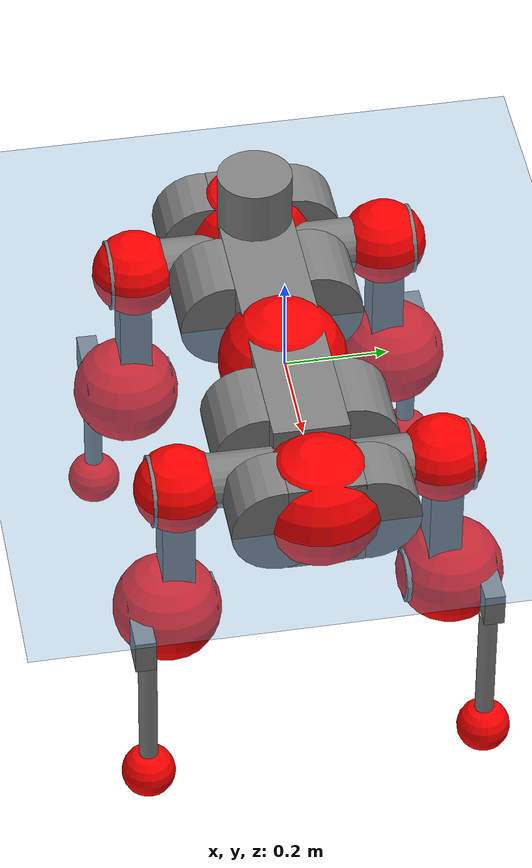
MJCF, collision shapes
<mujoco model="anymal_c">
  <compiler angle="radian" assetdir="assets" balanceinertia="true" inertiafromgeom="false"/>

  <option timestep="0.005" density="1.2" viscosity="2e-05"/>

  <size nkey="1"/>

  <visual>
    <quality shadowsize="8192"/>
    <map shadowclip="0.5"/>
  </visual>

  <default>
    <default class="/">
      <material specular="0" shininess="0.25"/>
      <geom contype="0" conaffinity="0" group="1" solref="-1000 -80"/>
      <site size="0.01 0.005 0.005" group="5"/>
      <general forcelimited="true" forcerange="-80 80" biastype="affine" gainprm="80" biasprm="0 -80 -2"/>
      <default class="anymal_c">
        <joint armature="0.01" damping="0.01" frictionloss="0.1"/>
        <default class="visual">
          <geom type="mesh" group="2"/>
          <default class="visual_zflip"/>
        </default>
        <default class="collision">
          <geom type="cylinder" group="3"/>
          <default class="foot">
            <geom size="0.03 0 0" type="sphere" condim="6" priority="1" friction="0.8 0.02 0.01" solimp="0.015 1 0.03"/>
          </default>
        </default>
      </default>
      <default class="reward_collision_sphere">
        <geom group="5" rgba="1 0 0 1"/>
      </default>
    </default>
  </default>

  <asset>
    <texture type="skybox" colorspace="auto" name="//unnamed_texture_0" builtin="gradient" rgb1="0.95 0.95 0.95" rgb2="0.95 0.95 0.95" width="100" height="600"/>
    <texture type="2d" colorspace="auto" name="texplane" builtin="checker" rgb1="0.345 0.575 0.748" rgb2="0.345 0.575 0.748" markrgb="1 1 1" width="512" height="512"/>
    <texture type="2d" colorspace="linear" name="base" file="base.png"/>
    <texture type="2d" colorspace="linear" name="top_shell" file="top_shell.png"/>
    <texture type="2d" colorspace="linear" name="bottom_shell" file="bottom_shell.png"/>
    <texture type="2d" colorspace="linear" name="remote" file="remote.png"/>
    <texture type="2d" colorspace="linear" name="hatch" file="hatch.png"/>
    <texture type="2d" colorspace="linear" name="handle" file="handle.png"/>
    <texture type="2d" colorspace="linear" name="face" file="face.png"/>
    <texture type="2d" colorspace="linear" name="battery" file="battery.png"/>
    <texture type="2d" colorspace="linear" name="lidar_cage" file="lidar_cage.png"/>
    <texture type="2d" colorspace="linear" name="depth_camera" file="depth_camera.png"/>
    <texture type="2d" colorspace="linear" name="wide_angle_camera" file="wide_angle_camera.png"/>
    <texture type="2d" colorspace="linear" name="lidar" file="lidar.png"/>
    <texture type="2d" colorspace="linear" name="drive" file="drive.png"/>
    <texture type="2d" colorspace="linear" name="hip_l" file="hip_l.png"/>
    <texture type="2d" colorspace="linear" name="shank_l" file="shank_l.png"/>
    <texture type="2d" colorspace="linear" name="foot" file="foot.png"/>
    <texture type="2d" colorspace="linear" name="thigh" file="thigh.png"/>
    <texture type="2d" colorspace="linear" name="shank_r" file="shank_r.png"/>
    <texture type="2d" colorspace="linear" name="hip_r" file="hip_r.png"/>
    <material name="MatPlane" class="/" texture="texplane" texuniform="true" texrepeat="2 2" specular="0.9" shininess="0.5"/>
    <material name="black_plastic" class="/" rgba="0.007 0.007 0.007 1"/>
    <material name="green" class="/" rgba="0.052 0.178 0.033 1"/>
    <material name="red" class="/" rgba="0.178 0.006 0.005 1"/>
    <material name="yellow" class="/" rgba="0.178 0.119 0.006 1"/>
    <material name="lwl" class="/" rgba="0.8 0.8 0.8 1"/>
    <material name="base" class="/" texture="base"/>
    <material name="top_shell" class="/" texture="top_shell"/>
    <material name="bottom_shell" class="/" texture="bottom_shell"/>
    <material name="hip_l" class="/" texture="hip_l"/>
    <material name="thigh" class="/" texture="thigh"/>
    <material name="shank_l" class="/" texture="shank_l"/>
    <material name="foot" class="/" texture="foot"/>
    <material name="hip_r" class="/" texture="hip_r"/>
    <material name="shank" class="/" texture="shank_r"/>
    <material name="hatch" class="/" texture="hatch"/>
    <material name="remote" class="/" texture="remote"/>
    <material name="handle" class="/" texture="handle"/>
    <material name="face" class="/" texture="face"/>
    <material name="depth_camera" class="/" texture="depth_camera"/>
    <material name="wide_angle_camera" class="/" texture="wide_angle_camera"/>
    <material name="battery" class="/" texture="battery"/>
    <material name="lidar_cage" class="/" texture="lidar_cage"/>
    <material name="lidar" class="/" texture="lidar"/>
    <material name="drive" class="/" texture="drive"/>
    <mesh name="base_0" class="/" file="base_0.obj"/>
    <mesh name="base_1" class="/" file="base_1.obj"/>
    <mesh name="base_2" class="/" file="base_2.obj"/>
    <mesh name="base_3" class="/" file="base_3.obj"/>
    <mesh name="base_4" class="/" file="base_4.obj"/>
    <mesh name="base_5" class="/" file="base_5.obj"/>
    <mesh name="top_shell" class="/" file="top_shell.obj"/>
    <mesh name="bottom_shell" class="/" file="bottom_shell.obj"/>
    <mesh name="remote" class="/" file="remote.obj"/>
    <mesh name="handle" class="/" file="handle.obj"/>
    <mesh name="face" class="/" file="face.obj"/>
    <mesh name="wide_angle_camera" class="/" file="wide_angle_camera.obj"/>
    <mesh name="depth_camera" class="/" file="depth_camera.obj"/>
    <mesh name="battery" class="/" file="battery.obj"/>
    <mesh name="lidar_cage" class="/" file="lidar_cage.obj"/>
    <mesh name="lidar" class="/" file="lidar.obj"/>
    <mesh name="drive" class="/" file="drive.obj"/>
    <mesh name="hip_l" class="/" file="hip_l.obj"/>
    <mesh name="thigh" class="/" file="thigh.obj"/>
    <mesh name="shank_l" class="/" file="shank_l.obj"/>
    <mesh name="foot" class="/" file="foot.obj"/>
    <mesh name="hip_r" class="/" file="hip_r.obj"/>
    <mesh name="hatch" class="/" file="hatch.obj"/>
    <mesh name="shank_r" class="/" file="shank_r.obj"/>
  </asset>

  <worldbody>
    <geom name="floor" class="/" size="100 100 0.125" type="plane" group="0" material="MatPlane"/>
    <light name="toplight_shadow" class="/" pos="0 0 5" dir="0.0990148 0.0990148 -0.990148" type="directional" ambient="0.04 0.04 0.04" diffuse="0.55 0.55 0.55" specular="0.12 0.12 0.12"/>
    <light name="toplight_fill" class="/" pos="0 0 5" dir="0.0990148 0.0990148 -0.990148" type="directional" castshadow="false" ambient="0.04 0.04 0.04" diffuse="0.3 0.3 0.3" specular="0.08 0.08 0.08"/>
    <body name="trunk" childclass="anymal_c" pos="-0.00877471 -0.00208557 0.00150591" quat="0.999993 -0.00321767 -0.000640585 0.0016671">
      <inertial pos="0.010257 -0.00134874 0.0500424" quat="0.502688 0.500136 0.492863 0.504237" mass="24.6779" diaginertia="0.330934 1.72929 0.274731"/>
      <joint name="//unnamed_joint_0" type="free" armature="0" damping="0" frictionloss="0"/>
      <geom name="//unnamed_geom_1" class="visual" material="green" mesh="base_0"/>
      <geom name="//unnamed_geom_2" class="visual" material="yellow" mesh="base_1"/>
      <geom name="//unnamed_geom_3" class="visual" material="red" mesh="base_2"/>
      <geom name="//unnamed_geom_4" class="visual" material="black_plastic" mesh="base_3"/>
      <geom name="//unnamed_geom_5" class="visual" material="lwl" mesh="base_4"/>
      <geom name="//unnamed_geom_6" class="visual" material="base" mesh="base_5"/>
      <geom name="trunk_1" class="collision" size="0.305375 0.0737113 0.0947717" type="box"/>
      <geom name="trunk_2" class="collision" size="0.0947717 0.0763439" pos="0.191294 0.0859999 0" quat="0.707107 0 0.707107 0"/>
      <geom name="trunk_3" class="collision" size="0.0947717 0.0763439" pos="-0.191294 0.0859999 0" quat="0.707107 0 0.707107 0"/>
      <geom name="trunk_4" class="collision" size="0.0947717 0.0763439" pos="0.191294 -0.0859999 0" quat="0.707107 0 0.707107 0"/>
      <geom name="trunk_5" class="collision" size="0.0947717 0.0763439" pos="-0.191294 -0.0859999 0" quat="0.707107 0 0.707107 0"/>
      <geom name="//unnamed_geom_12" class="visual" material="top_shell" mesh="top_shell"/>
      <geom name="//unnamed_geom_13" class="visual" material="bottom_shell" mesh="bottom_shell"/>
      <geom name="//unnamed_geom_14" class="visual" material="remote" mesh="remote"/>
      <geom name="//unnamed_geom_15" class="visual" material="handle" mesh="handle"/>
      <geom name="//unnamed_geom_16" class="visual" pos="0.364558 0 0" quat="1 0 0 0" material="face" mesh="face"/>
      <geom name="trunk_6" class="collision" size="0.057916 0.0737113 0.0947717" pos="0.412932 0 0" type="box"/>
      <geom name="//unnamed_geom_18" class="collision" size="0.0947717 0.057916" pos="0.412932 0.0859999 0" quat="0.707107 0 0.707107 0"/>
      <geom name="//unnamed_geom_19" class="collision" size="0.0947717 0.057916" pos="0.412932 -0.0859999 0" quat="0.707107 0 0.707107 0"/>
      <geom name="//unnamed_geom_20" class="visual" pos="0.406035 0 -0.0319915" quat="0.965926 0 0.258819 0" material="depth_camera" mesh="depth_camera"/>
      <geom name="//unnamed_geom_21" class="visual" pos="0.451191 0 0.0157331" material="wide_angle_camera" mesh="wide_angle_camera"/>
      <geom name="//unnamed_geom_22" class="visual_zflip" pos="-0.364558 0 0" quat="0 0 0 1" material="face" mesh="face"/>
      <geom name="trunk_7" class="collision" size="0.057916 0.0737113 0.0947717" pos="-0.412932 0 0" quat="0 0 0 1" type="box"/>
      <geom name="//unnamed_geom_24" class="collision" size="0.0947717 0.057916" pos="-0.412932 -0.0859999 0" quat="0 -0.707107 0 0.707107"/>
      <geom name="//unnamed_geom_25" class="collision" size="0.0947717 0.057916" pos="-0.412932 0.0859999 0" quat="0 -0.707107 0 0.707107"/>
      <geom name="//unnamed_geom_26" class="visual" pos="-0.406035 0 -0.0319915" quat="0 -0.258819 0 0.965926" material="depth_camera" mesh="depth_camera"/>
      <geom name="//unnamed_geom_27" class="visual_zflip" pos="-0.451191 0 0.0157331" quat="0 0 0 1" material="wide_angle_camera" mesh="wide_angle_camera"/>
      <geom name="//unnamed_geom_28" class="visual" material="battery" mesh="battery"/>
      <geom name="//unnamed_geom_29" class="visual" pos="0 0.0985239 0.0292277" quat="0.683013 -0.183013 0.183013 0.683013" material="depth_camera" mesh="depth_camera"/>
      <geom name="//unnamed_geom_30" class="visual" pos="0 -0.0985239 0.0292277" quat="0.683013 0.183013 0.183013 -0.683013" material="depth_camera" mesh="depth_camera"/>
      <geom name="//unnamed_geom_31" class="visual" pos="-0.320143 0 0.0772465" quat="1 0 0 0" material="lidar_cage" mesh="lidar_cage"/>
      <geom name="trunk_8" class="collision" size="0.0737113 0.0631811" pos="-0.320143 0 0.140305"/>
      <geom name="//unnamed_geom_33" class="visual" pos="-0.320143 0.000137135 0.149448" quat="0.707107 0 0 -0.707107" material="lidar" mesh="lidar"/>
      <geom name="//unnamed_geom_34" class="visual" pos="0.263766 0.127708 3.06356e-09" quat="0.258819 0.965926 0 0" material="drive" mesh="drive"/>
      <geom name="//unnamed_geom_35" class="visual" pos="0.263766 -0.127708 -3.06356e-09" quat="0.258819 -0.965926 0 0" material="drive" mesh="drive"/>
      <geom name="//unnamed_geom_36" class="visual" pos="-0.263766 0.127708 -3.06356e-09" quat="0 0 0.965926 -0.258819" material="drive" mesh="drive"/>
      <geom name="//unnamed_geom_37" class="visual" pos="-0.263766 -0.127708 3.06356e-09" quat="0 0 -0.965926 -0.258819" material="drive" mesh="drive"/>
      <geom name="//unnamed_geom_38" class="visual" pos="0.102024 0 0.076721" quat="1 0 0 0" material="hatch" mesh="hatch"/>
      <geom name="//unnamed_geom_39" class="reward_collision_sphere" size="0.126362"/>
      <geom name="//unnamed_geom_40" class="reward_collision_sphere" size="0.126362" pos="0.395781 0 0"/>
      <geom name="//unnamed_geom_41" class="reward_collision_sphere" size="0.126362" pos="-0.395781 0 0"/>
      <site name="imu" pos="0.208139 -0.00139771 0.0139946" size="0.0105302"/>
      <camera name="track" pos="0 -2.45714 0" quat="0.707107 0.707107 0 0" mode="trackcom"/>
      <camera name="ego_camera" pos="0.395781 0 -0.0420389" quat="-0.5 -0.5 0.5 0.5"/>
      <body name="LF_HIP" pos="0.264033 0.127464 -0.00102783" quat="0.259129 0.965843 -0.000463346 0.000362717">
        <inertial pos="0.0513321 -0.0142646 -0.0107315" quat="-0.128416 0.703684 -0.130126 0.68659" mass="3.36445" diaginertia="0.00278771 0.0136489 0.00420826"/>
        <joint name="LF_HAA" pos="0 0 0" axis="0.999096 0.0303494 -0.0297588" range="-0.885597 0.444177" armature="0.0108231" damping="0.000183138" frictionloss="0.102504"/>
        <geom name="//unnamed_geom_42" class="visual" pos="0 0.000180215 -2.96002e-05" quat="0.258819 -0.965926 0 0" material="hip_l" mesh="hip_l"/>
        <geom name="//unnamed_geom_43" class="visual" pos="0.0526829 -0.0683693 -0.0381594" quat="0.183013 -0.683013 0.683013 0.183013" material="drive" mesh="drive"/>
        <geom name="//unnamed_geom_44" class="collision" size="0.0526509 0.0737113" pos="0.0526829 -0.0146934 -0.00725697" quat="-0.353553 -0.612372 0.612372 -0.353553"/>
        <body name="LF_THIGH" pos="0.0509504 -0.0890861 -0.0464872" quat="0.182029 -0.681438 0.685142 0.181903">
          <inertial pos="0.0228599 0.00346931 -0.251043" quat="0.993029 -0.00502244 -0.0823502 0.0841782" mass="3.68649" diaginertia="0.0164433 0.0906497 0.00501419"/>
          <joint name="LF_HFE" pos="0 0 0" axis="1 0.000243422 -0.000190658" stiffness="0.0444864" range="-3.16692 3.15366" armature="0.0110419" damping="0.0122568" frictionloss="0.105663"/>
          <geom name="//unnamed_geom_45" class="visual" pos="-0.00694484 -1.09434e-05 0" quat="0.707107 0 0 -0.707107" material="thigh" mesh="thigh"/>
          <geom name="//unnamed_geom_46" class="collision" size="0.0684462 0.0421207" pos="0.0351805 0 0" quat="0.5 0.5 -0.5 -0.5"/>
          <geom name="//unnamed_geom_47" class="collision" size="0.0394882 0.0315906 0.148806" pos="0.0263854 0 -0.148517" quat="0.707107 0 0 -0.707107" type="box"/>
          <geom name="//unnamed_geom_48" class="visual" pos="0.0882152 0 -0.299527" quat="1 0 0 0" material="drive" mesh="drive"/>
          <geom name="//unnamed_geom_49" class="collision" size="0.0526509 0.0737113" pos="0.0266493 0 -0.299527" quat="0.707107 0 0.707107 0"/>
          <geom name="//unnamed_geom_50" class="reward_collision_sphere" size="0.0842415" pos="0.0219878 0 0"/>
          <body name="LF_SHANK" pos="0.0909413 0.0072633 -0.302681" quat="0.999999 -0.0013033 -0.000420679 0.000816983">
            <inertial pos="0.0104197 -0.0753865 -0.0885176" quat="0.993137 -0.11407 -0.00309143 -0.0256278" mass="0.6764" diaginertia="0.00490691 0.021931 0.00127928"/>
            <joint name="LF_KFE" pos="0 0 0" axis="1 -0.000444644 7.33889e-05" range="-2.99619 3.17899" armature="0.00960423" damping="0.0349123" frictionloss="0.0942908"/>
            <geom name="//unnamed_geom_51" class="visual" pos="-0.00226456 -0.0120747 0" quat="0.707107 0 0 -0.707107" material="shank_l" mesh="shank_l"/>
            <geom name="LF_kfe_act" class="collision" size="0.0631811 0.0210604" pos="0.0175903 0 0" quat="0.5 0.5 -0.5 -0.5"/>
            <geom name="//unnamed_geom_53" class="collision" size="0.0605475 0.0355394 0.0200074" pos="0.0175903 -0.0706415 0" quat="0.5 0.5 -0.5 -0.5" type="box"/>
            <geom name="//unnamed_geom_54" class="visual" pos="0.0114782 -0.111944 -0.355197" quat="0.382683 0 0 -0.92388" material="foot" mesh="foot"/>
            <geom name="LF_calf" class="collision" size="0.0184278 0.148741" pos="0.0114777 -0.108053 -0.177599" quat="0.707107 0 0 -0.707107"/>
            <geom name="LF_foot" class="foot" size="0.0201166" pos="0.0114777 -0.108053 -0.33155" quat="0.707107 0 0 -0.707107"/>
            <geom name="//unnamed_geom_57" class="reward_collision_sphere" size="0.105302" pos="-0.0439757 0 0"/>
            <geom name="//unnamed_geom_58" class="reward_collision_sphere" size="0.0526509" pos="0.0114777 -0.108053 -0.33155"/>
            <site name="LF_foot" class="foot" pos="0.0114777 -0.108053 -0.33155" quat="0.707107 0 0 -0.707107" size="0.0105302"/>
          </body>
        </body>
      </body>
      <body name="RF_HIP" pos="0.266356 -0.128149 0.0074081" quat="0.257367 -0.966312 0.00192623 0.000552167">
        <inertial pos="0.0479184 0.0253606 -0.00834405" quat="0.108162 0.673984 0.129032 0.719303" mass="3.29838" diaginertia="0.00336811 0.0142062 0.00454081"/>
        <joint name="RF_HAA" pos="0 0 0" axis="0.999937 -0.00291754 -0.0108227" range="-0.490229 0.709673" armature="0.010821" damping="0.022584" frictionloss="0.136983"/>
        <geom name="//unnamed_geom_59" class="visual" pos="0 -0.000180214 -2.96001e-05" quat="0.258819 0.965926 0 0" material="hip_r" mesh="hip_r"/>
        <geom name="//unnamed_geom_60" class="visual" pos="0.0526829 0.0683693 -0.0381594" quat="0.183013 0.683013 0.683013 -0.183013" material="drive" mesh="drive"/>
        <geom name="//unnamed_geom_61" class="collision" size="0.0526509 0.0737113" pos="0.0526829 0.0146934 -0.00725697" quat="-0.353553 0.612372 0.612372 0.353553"/>
        <body name="RF_THIGH" pos="0.0528159 0.0978605 -0.0438508" quat="0.183098 0.683743 0.682195 -0.183248">
          <inertial pos="0.0246741 0.00490658 -0.260207" quat="0.990818 -0.00094499 -0.0848687 0.105239" mass="3.51349" diaginertia="0.0158121 0.0851758 0.00507973"/>
          <joint name="RF_HFE" pos="0 0 0" axis="0.99998 -0.000533986 0.00637534" stiffness="0.0139293" range="-3.18618 3.0317" armature="0.010863" damping="0.00506789" frictionloss="0.0992547"/>
          <geom name="//unnamed_geom_62" class="visual" pos="-0.00694484 -1.09434e-05 0" quat="0.707107 0 0 -0.707107" material="thigh" mesh="thigh"/>
          <geom name="//unnamed_geom_63" class="collision" size="0.0684462 0.0421207" pos="0.0351805 0 0" quat="0.5 0.5 0.5 0.5"/>
          <geom name="//unnamed_geom_64" class="collision" size="0.0394882 0.0315906 0.148806" pos="0.0263854 0 -0.148517" quat="0.707107 0 0 0.707107" type="box"/>
          <geom name="//unnamed_geom_65" class="visual" pos="0.0882152 0 -0.299527" quat="1 0 0 0" material="drive" mesh="drive"/>
          <geom name="//unnamed_geom_66" class="collision" size="0.0526509 0.0737113" pos="0.0266493 0 -0.299527" quat="0.707107 0 0.707107 0"/>
          <geom name="//unnamed_geom_67" class="reward_collision_sphere" size="0.0842415" pos="0.0219878 0 0"/>
          <body name="RF_SHANK" pos="0.0887328 0.00538418 -0.29992" quat="1 7.87457e-06 -2.97665e-05 1.96293e-05">
            <inertial pos="0.00491321 0.0772984 -0.0835695" quat="0.990313 0.127399 -0.0176853 0.052319" mass="0.668018" diaginertia="0.00536809 0.0257361 0.00150633"/>
            <joint name="RF_KFE" pos="0 0 0" axis="0.999242 0.0235826 -0.0309743" stiffness="0.029879" range="-3.07913 3.05625" armature="0.0104288" damping="0" frictionloss="0.108889"/>
            <geom name="//unnamed_geom_68" class="visual" pos="-0.00226455 0.0120747 0" quat="0.707107 0 0 0.707107" material="shank" mesh="shank_r"/>
            <geom name="RF_kfe_act" class="collision" size="0.0631811 0.0210604" pos="0.0175903 0 0" quat="0.5 0.5 0.5 0.5"/>
            <geom name="//unnamed_geom_70" class="collision" size="0.0605475 0.0355394 0.0200074" pos="0.0175903 0.0706415 0" quat="0.5 0.5 0.5 0.5" type="box"/>
            <geom name="//unnamed_geom_71" class="visual" pos="0.0114771 0.111944 -0.355197" quat="0.382683 0 0 0.92388" material="foot" mesh="foot"/>
            <geom name="RF_calf" class="collision" size="0.0184278 0.148741" pos="0.0114777 0.108053 -0.177599" quat="0.707107 0 0 0.707107"/>
            <geom name="RF_foot" class="foot" size="0.0302614" pos="0.0114777 0.108053 -0.33155" quat="0.707107 0 0 0.707107"/>
            <geom name="//unnamed_geom_74" class="reward_collision_sphere" size="0.105302" pos="-0.0439757 0 0"/>
            <geom name="//unnamed_geom_75" class="reward_collision_sphere" size="0.0526509" pos="0.0114777 0.108053 -0.33155"/>
            <site name="RF_foot" class="foot" pos="0.0114777 0.108053 -0.33155" quat="0.707107 0 0 0.707107" size="0.0105302"/>
          </body>
        </body>
      </body>
      <body name="LH_HIP" pos="-0.263262 0.128257 0.00455067" quat="0.00021522 -0.00017383 0.965803 -0.259276">
        <inertial pos="0.0495408 0.0109137 -0.00416439" quat="0.116914 0.686883 0.0869663 0.712011" mass="2.99077" diaginertia="0.00322355 0.0137707 0.00391786"/>
        <joint name="LH_HAA" pos="0 0 0" axis="0.999997 0.00218642 0.000685802" range="-0.534775 0.777774" armature="0.0132216" damping="0.00442848" frictionloss="0.0699917"/>
        <geom name="//unnamed_geom_76" class="visual" pos="0 -0.000180214 -2.96001e-05" quat="-0.258819 -0.965926 0 0" material="hip_r" mesh="hip_r"/>
        <geom name="//unnamed_geom_77" class="visual" pos="0.0526829 0.0683693 -0.0381594" quat="0.183013 0.683013 0.683013 -0.183013" material="drive" mesh="drive"/>
        <geom name="//unnamed_geom_78" class="collision" size="0.0526509 0.0737113" pos="0.0526829 0.0146934 -0.00725697" quat="-0.353553 0.612372 0.612372 0.353553"/>
        <body name="LH_THIGH" pos="0.052296 0.0955808 -0.0506502" quat="0.182108 0.683464 0.682625 -0.183677">
          <inertial pos="0.0266427 0.000522135 -0.256314" quat="0.992756 -0.00542323 -0.0812572 0.0883357" mass="3.2621" diaginertia="0.0164456 0.0864576 0.00517717"/>
          <joint name="LH_HFE" pos="0 0 0" axis="0.999884 0.0074207 -0.0132875" range="-3.10398 3.18196" armature="0.00818439" damping="0.0184379" frictionloss="0.10507"/>
          <geom name="//unnamed_geom_79" class="visual" pos="-0.00694484 -1.09434e-05 0" quat="0.707107 0 0 -0.707107" material="thigh" mesh="thigh"/>
          <geom name="//unnamed_geom_80" class="collision" size="0.0684462 0.0421207" pos="0.0351805 0 0" quat="0.5 0.5 -0.5 -0.5"/>
          <geom name="//unnamed_geom_81" class="collision" size="0.0394882 0.0315906 0.148806" pos="0.0263854 0 -0.148517" quat="0.707107 0 0 -0.707107" type="box"/>
          <geom name="//unnamed_geom_82" class="visual" pos="0.0882152 0 -0.299527" quat="1 0 0 0" material="drive" mesh="drive"/>
          <geom name="//unnamed_geom_83" class="collision" size="0.0526509 0.0737113" pos="0.0266493 0 -0.299527" quat="0.707107 0 0.707107 0"/>
          <geom name="//unnamed_geom_84" class="reward_collision_sphere" size="0.0842415" pos="0.0219878 0 0"/>
          <body name="LH_SHANK" pos="0.0886978 -0.000571792 -0.292214" quat="1 -0.00018766 -0.000568189 -1.17171e-05">
            <inertial pos="0.00488828 0.0668927 -0.082772" quat="0.992398 0.120469 0.00838958 0.0237163" mass="0.685746" diaginertia="0.00551223 0.0265302 0.00158966"/>
            <joint name="LH_KFE" pos="0 0 0" axis="0.999966 0.00592516 0.00568239" stiffness="0.0431645" range="-3.13232 3.11548" armature="0.00932907" damping="0.0237396" frictionloss="0.0628433"/>
            <geom name="//unnamed_geom_85" class="visual" pos="-0.00226455 0.0120747 0" quat="-0.707107 0 0 -0.707107" material="shank" mesh="shank_r"/>
            <geom name="LH_kfe_act" class="collision" size="0.0631811 0.0210604" pos="0.0175903 0 0" quat="0.5 0.5 -0.5 -0.5"/>
            <geom name="//unnamed_geom_87" class="collision" size="0.0605475 0.0355394 0.0200074" pos="0.0175903 0.0706415 0" quat="0.5 0.5 -0.5 -0.5" type="box"/>
            <geom name="//unnamed_geom_88" class="visual" pos="0.0114771 0.111944 -0.355197" quat="-0.382683 0 0 -0.92388" material="foot" mesh="foot"/>
            <geom name="LH_calf" class="collision" size="0.0184278 0.148741" pos="0.0114777 0.108053 -0.177599" quat="0.707107 0 0 -0.707107"/>
            <geom name="LH_foot" class="foot" size="0.0342155" pos="0.0114777 0.108053 -0.33155" quat="0.707107 0 0 -0.707107"/>
            <geom name="//unnamed_geom_91" class="reward_collision_sphere" size="0.105302" pos="-0.0439757 0 0"/>
            <geom name="//unnamed_geom_92" class="reward_collision_sphere" size="0.0526509" pos="0.0114777 0.108053 -0.33155"/>
            <site name="LH_foot" class="foot" pos="0.0114777 0.108053 -0.33155" quat="0.707107 0 0 -0.707107" size="0.0105302"/>
          </body>
        </body>
      </body>
      <body name="RH_HIP" pos="-0.263815 -0.125489 0.00148696" quat="-0.00172149 -0.00336527 -0.966177 -0.257853">
        <inertial pos="0.0416838 -0.0234002 -0.000690376" quat="-0.131504 0.696329 -0.145151 0.690481" mass="3.21016" diaginertia="0.00302034 0.0134023 0.00408089"/>
        <joint name="RH_HAA" pos="0 0 0" axis="0.999098 0.0200255 0.0374416" range="-0.72376 0.532445" armature="0.0113992" damping="0.00565599" frictionloss="0.114133"/>
        <geom name="//unnamed_geom_93" class="visual" pos="0 0.000180215 -2.96002e-05" quat="-0.258819 0.965926 0 0" material="hip_l" mesh="hip_l"/>
        <geom name="//unnamed_geom_94" class="visual" pos="0.0526829 -0.0683693 -0.0381594" quat="-0.183013 0.683013 -0.683013 -0.183013" material="drive" mesh="drive"/>
        <geom name="//unnamed_geom_95" class="collision" size="0.0526509 0.0737113" pos="0.0526829 -0.0146934 -0.00725697" quat="0.353553 0.612372 -0.612372 0.353553"/>
        <body name="RH_THIGH" pos="0.0517411 -0.0864553 -0.0359508" quat="-0.183085 0.682972 -0.683037 -0.183002">
          <inertial pos="0.0252732 -0.000125061 -0.258127" quat="0.993219 -0.00284349 -0.0823936 0.0819737" mass="3.857" diaginertia="0.0155375 0.0798965 0.00534361"/>
          <joint name="RH_HFE" pos="0 0 0" axis="0.999969 -0.0027135 0.00736767" range="-3.15416 3.01713" armature="0.00936231" damping="0.0119733" frictionloss="0.113961"/>
          <geom name="//unnamed_geom_96" class="visual" pos="-0.00694484 -1.09434e-05 0" quat="0.707107 0 0 -0.707107" material="thigh" mesh="thigh"/>
          <geom name="//unnamed_geom_97" class="collision" size="0.0684462 0.0421207" pos="0.0351805 0 0" quat="0.5 0.5 0.5 0.5"/>
          <geom name="//unnamed_geom_98" class="collision" size="0.0394882 0.0315906 0.148806" pos="0.0263854 0 -0.148517" quat="0.707107 0 0 0.707107" type="box"/>
          <geom name="//unnamed_geom_99" class="visual" pos="0.0882152 0 -0.299527" quat="1 0 0 0" material="drive" mesh="drive"/>
          <geom name="//unnamed_geom_100" class="collision" size="0.0526509 0.0737113" pos="0.0266493 0 -0.299527" quat="0.707107 0 0.707107 0"/>
          <geom name="//unnamed_geom_101" class="reward_collision_sphere" size="0.0842415" pos="0.0219878 0 0"/>
          <body name="RH_SHANK" pos="0.0878497 0.00369843 -0.300755" quat="1 -9.28911e-05 0.000243841 -0.000473115">
            <inertial pos="0.0092493 -0.0728755 -0.0863761" quat="0.994078 -0.107107 -0.00218078 -0.0182089" mass="0.673162" diaginertia="0.00535574 0.0264772 0.00134311"/>
            <joint name="RH_KFE" pos="0 0 0" axis="0.999427 0.0109846 -0.0320056" range="-3.12988 3.12248" armature="0.0101875" damping="0" frictionloss="0.100736"/>
            <geom name="//unnamed_geom_102" class="visual" pos="-0.00226456 -0.0120747 0" quat="0.707107 0 0 -0.707107" material="shank_l" mesh="shank_l"/>
            <geom name="RH_kfe_act" class="collision" size="0.0631811 0.0210604" pos="0.0175903 0 0" quat="0.5 0.5 0.5 0.5"/>
            <geom name="//unnamed_geom_104" class="collision" size="0.0605475 0.0355394 0.0200074" pos="0.0175903 -0.0706415 0" quat="0.5 0.5 0.5 0.5" type="box"/>
            <geom name="//unnamed_geom_105" class="visual" pos="0.0114782 -0.111944 -0.355197" quat="0.382683 0 0 -0.92388" material="foot" mesh="foot"/>
            <geom name="RH_calf" class="collision" size="0.0184278 0.148741" pos="0.0114777 -0.108053 -0.177599" quat="0.707107 0 0 0.707107"/>
            <geom name="RH_foot" class="foot" size="0.0389153" pos="0.0114777 -0.108053 -0.33155" quat="0.707107 0 0 0.707107"/>
            <geom name="//unnamed_geom_108" class="reward_collision_sphere" size="0.105302" pos="-0.0439757 0 0"/>
            <geom name="//unnamed_geom_109" class="reward_collision_sphere" size="0.0526509" pos="0.0114777 -0.108053 -0.33155"/>
            <site name="RH_foot" class="foot" pos="0.0114777 -0.108053 -0.33155" quat="0.707107 0 0 0.707107" size="0.0105302"/>
          </body>
        </body>
      </body>
    </body>
  </worldbody>

  <contact>
    <pair class="/" geom1="floor" geom2="LF_foot" name="//unnamed_contact_0"/>
    <pair class="/" geom1="floor" geom2="RF_foot" name="//unnamed_contact_1"/>
    <pair class="/" geom1="floor" geom2="LH_foot" name="//unnamed_contact_2"/>
    <pair class="/" geom1="floor" geom2="RH_foot" name="//unnamed_contact_3"/>
  </contact>

  <actuator>
    <general name="LF_HAA" class="/" joint="LF_HAA" forcerange="-84.3368 84.3368" gainprm="79.2108" biasprm="0 -79.2108 -2.38094"/>
    <general name="LF_HFE" class="/" joint="LF_HFE" forcerange="-91.1001 91.1001" gainprm="79.2108" biasprm="0 -79.2108 -2.38094"/>
    <general name="LF_KFE" class="/" joint="LF_KFE" forcerange="-78.7293 78.7293" gainprm="79.2108" biasprm="0 -79.2108 -2.38094"/>
    <general name="RF_HAA" class="/" joint="RF_HAA" forcerange="-82.2435 82.2435" gainprm="79.2108" biasprm="0 -79.2108 -2.38094"/>
    <general name="RF_HFE" class="/" joint="RF_HFE" forcerange="-78.1854 78.1854" gainprm="79.2108" biasprm="0 -79.2108 -2.38094"/>
    <general name="RF_KFE" class="/" joint="RF_KFE" forcerange="-85.2638 85.2638" gainprm="79.2108" biasprm="0 -79.2108 -2.38094"/>
    <general name="LH_HAA" class="/" joint="LH_HAA" forcerange="-59.6827 59.6827" gainprm="79.2108" biasprm="0 -79.2108 -2.38094"/>
    <general name="LH_HFE" class="/" joint="LH_HFE" forcerange="-90.1667 90.1667" gainprm="79.2108" biasprm="0 -79.2108 -2.38094"/>
    <general name="LH_KFE" class="/" joint="LH_KFE" forcerange="-108.827 108.827" gainprm="79.2108" biasprm="0 -79.2108 -2.38094"/>
    <general name="RH_HAA" class="/" joint="RH_HAA" forcerange="-96.1722 96.1722" gainprm="79.2108" biasprm="0 -79.2108 -2.38094"/>
    <general name="RH_HFE" class="/" joint="RH_HFE" forcerange="-61.0902 61.0902" gainprm="79.2108" biasprm="0 -79.2108 -2.38094"/>
    <general name="RH_KFE" class="/" joint="RH_KFE" forcerange="-91.05 91.05" gainprm="79.2108" biasprm="0 -79.2108 -2.38094"/>
  </actuator>

  <sensor>
    <gyro site="imu" name="imu_angular_velocity"/>
    <velocimeter site="imu" name="imu_linear_velocity"/>
    <framelinvel objtype="site" objname="LF_foot" name="LF_foot_global_linear_velocity"/>
    <framelinvel objtype="site" objname="RF_foot" name="RF_foot_global_linear_velocity"/>
    <framelinvel objtype="site" objname="LH_foot" name="LH_foot_global_linear_velocity"/>
    <framelinvel objtype="site" objname="RH_foot" name="RH_foot_global_linear_velocity"/>
  </sensor>

  <keyframe>
    <key name="home" qpos="0 0 0.55 1 0 0 0 0 0.4 -0.8 0 -0.4 0.8 0 -0.4 0.8 0 0.4 -0.8"/>
  </keyframe>
</mujoco>
